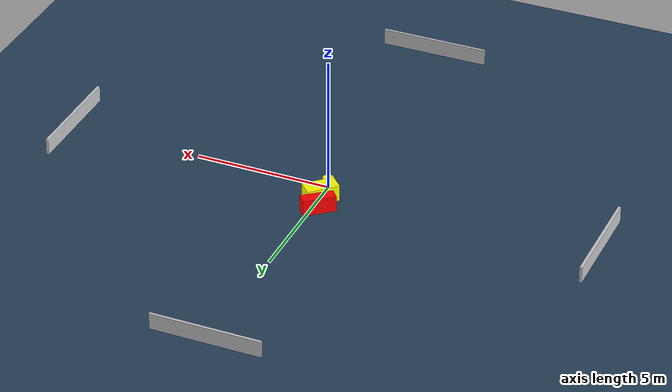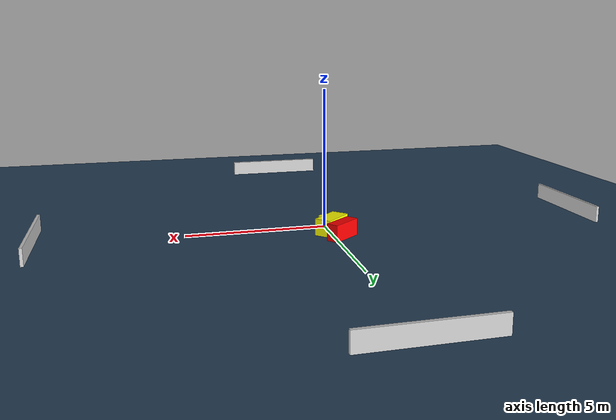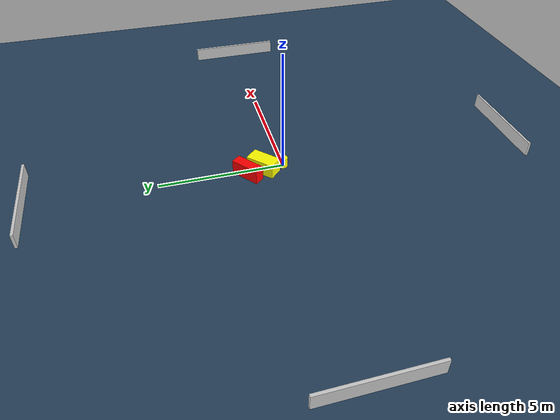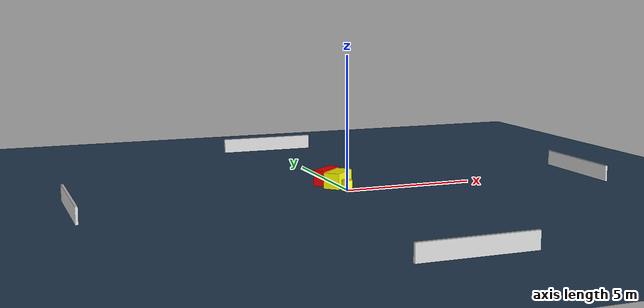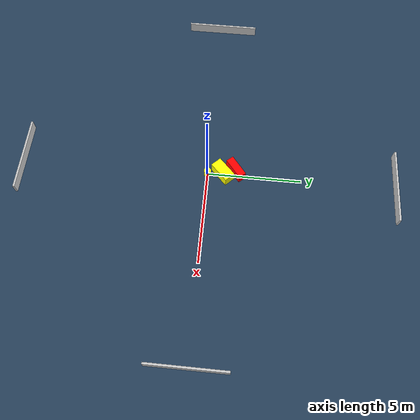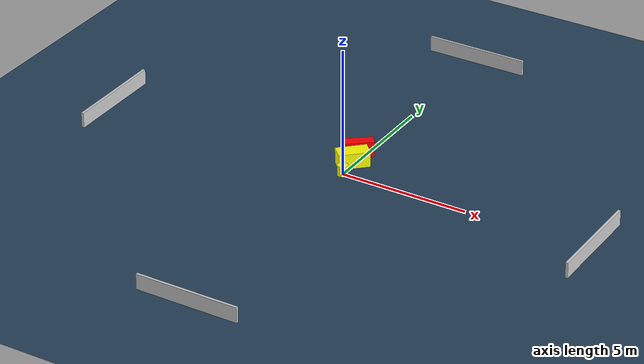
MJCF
<?xml version="1.0" ?>
<mujoco model="generated_environment">
  <option timestep="0.01" integrator="RK4" cone="elliptic"/>
  <default>
    <geom density="1"/>
  </default>
  <asset>
    <texture builtin="gradient" height="3072" name="skybox" rgb1="0.3 0.5 0.7" rgb2="0 0 0" type="skybox" width="512"/>
    <texture builtin="checker" height="300" name="groundplane" rgb1="0.2 0.3 0.4" rgb2="0.1 0.2 0.3" type="2d" width="300"/>
    <material name="groundplane" reflectance="0.2" texrepeat="5 5" texture="groundplane"/>
  </asset>
  <worldbody>
    <light dir="0 0 -1" directional="true" pos="0 0 1.5"/>
    <geom condim="3" friction="0.5 0.005 0.001" material="groundplane" name="floor" pos="0 0 0" size="0 0 0.05" type="plane"/>
    <body name="walls">
      <geom name="wall_1" condim="4" pos="-10.0 0.0 0.3" rgba="0.800000011920929 0.800000011920929 0.800000011920929 1.0" size="0.05 2.0 0.3" type="box"/>
      <geom name="wall_2" condim="4" pos="10.0 0.0 0.3" rgba="0.800000011920929 0.800000011920929 0.800000011920929 1.0" size="0.05 2.0 0.3" type="box"/>
      <geom name="wall_3" condim="4" pos="0.0 -10.0 0.3" rgba="0.800000011920929 0.800000011920929 0.800000011920929 1.0" size="2.0 0.05 0.3" type="box"/>
      <geom name="wall_4" condim="4" pos="0.0 10.0 0.3" rgba="0.800000011920929 0.800000011920929 0.800000011920929 1.0" size="2.0 0.05 0.3" type="box"/>
    </body>
    <body name="robot">
      <joint name="joint_x" type="slide" pos="0 0 0" axis="1 0 0"/>
      <joint name="joint_y" type="slide" pos="0 0 0" axis="0 1 0"/>
      <geom name="robot" type="cylinder" pos="0.0 0.0 0.2" size="0.2 0.2 0.0" mass="5.0" friction="1.0 0.005 0.0001" condim="4" rgba="1.0 1.0 0.0 1.0"/>
    </body>
    <body name="obstacle_1_movable">
      <geom name="obstacle_1_movable" condim="4" pos="-0.06086284558732447 0.8106699315365871 0.3" euler="0 0 313.914534570084" friction="0.0 0.005 0.001" rgba="1.0 1.0 0.0 1.0" size="0.3052565102662981 0.5938857871414682 0.3" type="box" mass="0.1"/>
      <joint type="free"/>
    </body>
    <body name="obstacle_2_static">
      <geom name="obstacle_2_static" condim="4" pos="-0.2656318486134502 1.4989332654872336 0.3" euler="0 0 128.7615218832566" friction="0.0 0.005 0.001" rgba="1.0 0.0 0.0 1.0" size="0.2110125469371136 0.5985968604859752 0.3" type="box"/>
    </body>
  </worldbody>
  <actuator>
    <motor name="actuator_x" joint="joint_x" gear="1" ctrlrange="-1 1"/>
    <motor name="actuator_y" joint="joint_y" gear="1" ctrlrange="-1 1"/>
  </actuator>
</mujoco>
